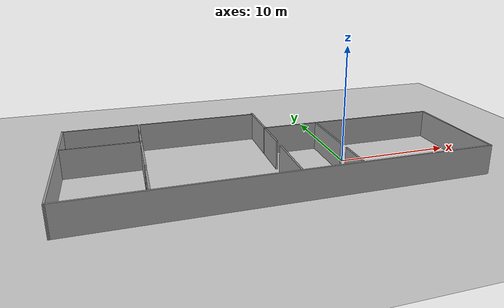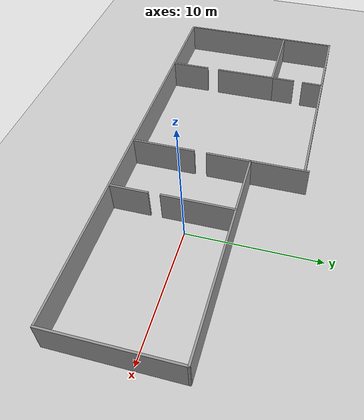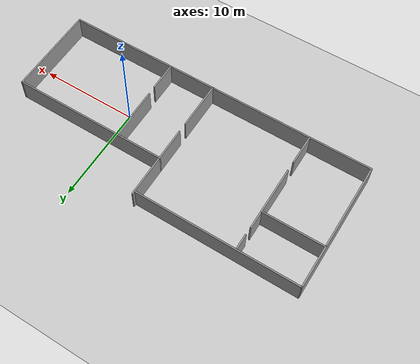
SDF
<sdf version="1.6">
 <world name="default">
  <light name="sun" type="directional">
   <pose>0 0 10 0 -0 0</pose>
   <diffuse>0.8 0.8 0.8 1</diffuse>
   <specular>0.1 0.1 0.1 1</specular>
   <attenuation>
    <range>1000</range>
    <constant>0.9</constant>
    <linear>0.01</linear>
    <quadratic>0.001</quadratic>
   </attenuation>
   <direction>-0.5 0.5 -1</direction>
  </light>
  <model name="ground_plane">
   <static>1</static>
   <link name="link">
    <collision name="collision">
     <geometry><plane><normal>0 0 1</normal><size>100 100</size></plane></geometry>
     <surface><friction><ode><mu>100</mu><mu2>50</mu2></ode></friction></surface>
    </collision>
    <visual name="visual">
     <cast_shadows>0</cast_shadows>
     <geometry><plane><normal>0 0 1</normal><size>100 100</size></plane></geometry>
     <material>
      <script><uri>file://media/materials/scripts/gazebo.material</uri><name>Gazebo/Grey</name></script>
     </material>
    </visual>
   </link>
  </model>
  <gravity>0 0 -9.8</gravity>
  <magnetic_field>6e-06 2.3e-05 -4.2e-05</magnetic_field>
  <atmosphere type="adiabatic"/>
  <physics name="default_physics" default="0" type="ode">
   <max_step_size>0.001</max_step_size>
   <real_time_factor>1</real_time_factor>
   <real_time_update_rate>1000</real_time_update_rate>
  </physics>
  <scene><ambient>0.4 0.4 0.4 1</ambient><background>0.7 0.7 0.7 1</background><shadows>1</shadows></scene>
  <spherical_coordinates>
   <surface_model>EARTH_WGS84</surface_model>
   <latitude_deg>0</latitude_deg>
   <longitude_deg>0</longitude_deg>
   <elevation>0</elevation>
   <heading_deg>0</heading_deg>
  </spherical_coordinates>
  <model name="rooms_3">
   <pose>-6.39478 0.976761 0 0 -0 0</pose>
   <link name="Wall_10">
    <collision name="Wall_10_Collision">
     <geometry><box><size>33.25 0.15 2.5</size></box></geometry>
     <pose>0 0 1.25 0 -0 0</pose>
    </collision>
    <visual name="Wall_10_Visual">
     <pose>0 0 1.25 0 -0 0</pose>
     <geometry><box><size>33.25 0.15 2.5</size></box></geometry>
     <material>
      <script><uri>file://media/materials/scripts/gazebo.material</uri><name>Gazebo/Grey</name></script>
      <ambient>1 1 1 1</ambient>
     </material>
    </visual>
    <pose>8.5e-05 -6.84992 0 0 -0 0</pose>
   </link>
   <link name="Wall_11">
    <collision name="Wall_11_Collision">
     <geometry><box><size>9.5 0.15 2.5</size></box></geometry>
     <pose>0 0 1.25 0 -0 0</pose>
    </collision>
    <visual name="Wall_11_Visual">
     <pose>0 0 1.25 0 -0 0</pose>
     <geometry><box><size>9.5 0.15 2.5</size></box></geometry>
     <material>
      <script><uri>file://media/materials/scripts/gazebo.material</uri><name>Gazebo/Grey</name></script>
      <ambient>1 1 1 1</ambient>
     </material>
    </visual>
    <pose>16.5501 -2.17491 0 0 -0 1.5708</pose>
   </link>
   <link name="Wall_12">
    <collision name="Wall_12_Collision">
     <geometry><box><size>16.25 0.15 2.5</size></box></geometry>
     <pose>0 0 1.25 0 -0 0</pose>
    </collision>
    <visual name="Wall_12_Visual">
     <pose>0 0 1.25 0 -0 0</pose>
     <geometry><box><size>16.25 0.15 2.5</size></box></geometry>
     <material>
      <script><uri>file://media/materials/scripts/gazebo.material</uri><name>Gazebo/Grey</name></script>
      <ambient>1 1 1 1</ambient>
     </material>
    </visual>
    <pose>8.50009 2.50008 0 0 -0 3.14159</pose>
   </link>
   <link name="Wall_13">
    <collision name="Wall_13_Collision">
     <geometry><box><size>4.5 0.15 2.5</size></box></geometry>
     <pose>0 0 1.25 0 -0 0</pose>
    </collision>
    <visual name="Wall_13_Visual">
     <pose>0 0 1.25 0 -0 0</pose>
     <geometry><box><size>4.5 0.15 2.5</size></box></geometry>
     <material>
      <script><uri>file://media/materials/scripts/gazebo.material</uri><name>Gazebo/Grey</name></script>
      <ambient>1 1 1 1</ambient>
     </material>
    </visual>
    <pose>0.450085 4.67509 0 0 -0 1.5708</pose>
   </link>
   <link name="Wall_16">
    <collision name="Wall_16_Collision">
     <geometry><box><size>17 0.15 2.5</size></box></geometry>
     <pose>0 0 1.25 0 -0 0</pose>
    </collision>
    <visual name="Wall_16_Visual">
     <pose>0 0 1.25 0 -0 0</pose>
     <geometry><box><size>17 0.15 2.5</size></box></geometry>
     <material>
      <script><uri>file://media/materials/scripts/gazebo.material</uri><name>Gazebo/Grey</name></script>
      <ambient>1 1 1 1</ambient>
     </material>
    </visual>
    <pose>-8.09444 6.58565 0 0 -0 0</pose>
   </link>
   <link name="Wall_20">
    <collision name="Wall_20_Collision">
     <geometry><box><size>5.5 0.15 2.5</size></box></geometry>
     <pose>0 0 1.25 0 -0 0</pose>
    </collision>
    <visual name="Wall_20_Visual">
     <pose>0 0 1.25 0 -0 0</pose>
     <geometry><box><size>5.5 0.15 2.5</size></box></geometry>
     <material>
      <script><uri>file://media/materials/scripts/gazebo.material</uri><name>Gazebo/Grey</name></script>
      <ambient>1 1 1 1</ambient>
     </material>
    </visual>
    <pose>5.26714 -0.236319 0 0 0 -1.5708</pose>
   </link>
   <link name="Wall_22">
    <collision name="Wall_22_Collision">
     <geometry><box><size>3 0.15 2.5</size></box></geometry>
     <pose>0 0 1.25 0 -0 0</pose>
    </collision>
    <visual name="Wall_22_Visual">
     <pose>0 0 1.25 0 -0 0</pose>
     <geometry><box><size>3 0.15 2.5</size></box></geometry>
     <material>
      <script><uri>file://media/materials/scripts/gazebo.material</uri><name>Gazebo/Grey</name></script>
      <ambient>1 1 1 1</ambient>
     </material>
    </visual>
    <pose>5.2979 -5.3538 0 0 0 -1.5708</pose>
   </link>
   <link name="Wall_24">
    <collision name="Wall_24_Collision">
     <geometry><box><size>3.5 0.15 2.5</size></box></geometry>
     <pose>0 0 1.25 0 -0 0</pose>
    </collision>
    <visual name="Wall_24_Visual">
     <pose>0 0 1.25 0 -0 0</pose>
     <geometry><box><size>3.5 0.15 2.5</size></box></geometry>
     <material>
      <script><uri>file://media/materials/scripts/gazebo.material</uri><name>Gazebo/Grey</name></script>
      <ambient>1 1 1 1</ambient>
     </material>
    </visual>
    <pose>0.450085 0.825085 0 0 0 -1.5708</pose>
   </link>
   <link name="Wall_26">
    <collision name="Wall_26_Collision">
     <geometry><box><size>5 0.15 2.5</size></box></geometry>
     <pose>0 0 1.25 0 -0 0</pose>
    </collision>
    <visual name="Wall_26_Visual">
     <pose>0 0 1.25 0 -0 0</pose>
     <geometry><box><size>5 0.15 2.5</size></box></geometry>
     <material>
      <script><uri>file://media/materials/scripts/gazebo.material</uri><name>Gazebo/Grey</name></script>
      <ambient>1 1 1 1</ambient>
     </material>
    </visual>
    <pose>0.437199 -4.3548 0 0 0 -1.5708</pose>
   </link>
   <link name="Wall_29">
    <collision name="Wall_29_Collision">
     <geometry><box><size>6.5 0.15 2.5</size></box></geometry>
     <pose>0 0 1.25 0 -0 0</pose>
    </collision>
    <visual name="Wall_29_Visual">
     <pose>0 0 1.25 0 -0 0</pose>
     <geometry><box><size>6.5 0.15 2.5</size></box></geometry>
     <material>
      <script><uri>file://media/materials/scripts/gazebo.material</uri><name>Gazebo/Grey</name></script>
      <ambient>1 1 1 1</ambient>
     </material>
    </visual>
    <pose>-13.3487 2.24175 0 0 -0 0</pose>
   </link>
   <link name="Wall_30">
    <collision name="Wall_30_Collision">
     <geometry><box><size>2 0.15 2.5</size></box></geometry>
     <pose>0 0 1.25 0 -0 0</pose>
    </collision>
    <visual name="Wall_30_Visual">
     <pose>0 0 1.25 0 -0 0</pose>
     <geometry><box><size>2 0.15 2.5</size></box></geometry>
     <material>
      <script><uri>file://media/materials/scripts/gazebo.material</uri><name>Gazebo/Grey</name></script>
      <ambient>1 1 1 1</ambient>
     </material>
    </visual>
    <pose>-10.1737 3.16675 0 0 -0 1.5708</pose>
   </link>
   <link name="Wall_33">
    <collision name="Wall_33_Collision">
     <geometry><box><size>1.75 0.15 2.5</size></box></geometry>
     <pose>0 0 1.25 0 -0 0</pose>
    </collision>
    <visual name="Wall_33_Visual">
     <pose>0 0 1.25 0 -0 0</pose>
     <geometry><box><size>1.75 0.15 2.5</size></box></geometry>
     <material>
      <script><uri>file://media/materials/scripts/gazebo.material</uri><name>Gazebo/Grey</name></script>
      <ambient>1 1 1 1</ambient>
     </material>
    </visual>
    <pose>-10.1407 5.77893 0 0 -0 1.5708</pose>
   </link>
   <link name="Wall_35">
    <collision name="Wall_35_Collision">
     <geometry><box><size>5 0.15 2.5</size></box></geometry>
     <pose>0 0 1.25 0 -0 0</pose>
    </collision>
    <visual name="Wall_35_Visual">
     <pose>0 0 1.25 0 -0 0</pose>
     <geometry><box><size>5 0.15 2.5</size></box></geometry>
     <material>
      <script><uri>file://media/materials/scripts/gazebo.material</uri><name>Gazebo/Grey</name></script>
      <ambient>1 1 1 1</ambient>
     </material>
    </visual>
    <pose>-10.1737 -0.183249 0 0 0 -1.5708</pose>
   </link>
   <link name="Wall_37">
    <collision name="Wall_37_Collision">
     <geometry><box><size>3.25 0.15 2.5</size></box></geometry>
     <pose>0 0 1.25 0 -0 0</pose>
    </collision>
    <visual name="Wall_37_Visual">
     <pose>0 0 1.25 0 -0 0</pose>
     <geometry><box><size>3.25 0.15 2.5</size></box></geometry>
     <material>
      <script><uri>file://media/materials/scripts/gazebo.material</uri><name>Gazebo/Grey</name></script>
      <ambient>1 1 1 1</ambient>
     </material>
    </visual>
    <pose>-10.1893 -5.27002 0 0 0 -1.5708</pose>
   </link>
   <link name="Wall_9">
    <collision name="Wall_9_Collision">
     <geometry><box><size>13.5856 0.15 2.5</size></box></geometry>
     <pose>0 0 1.25 0 -0 0</pose>
    </collision>
    <visual name="Wall_9_Visual">
     <pose>0 0 1.25 0 -0 0</pose>
     <geometry><box><size>13.5856 0.15 2.5</size></box></geometry>
     <material>
      <script><uri>file://media/materials/scripts/gazebo.material</uri><name>Gazebo/Grey</name></script>
      <ambient>1 1 1 1</ambient>
     </material>
    </visual>
    <pose>-16.5347 -0.132135 0 0 0 -1.57306</pose>
   </link>
   <static>1</static>
  </model>
 </world>
</sdf>
